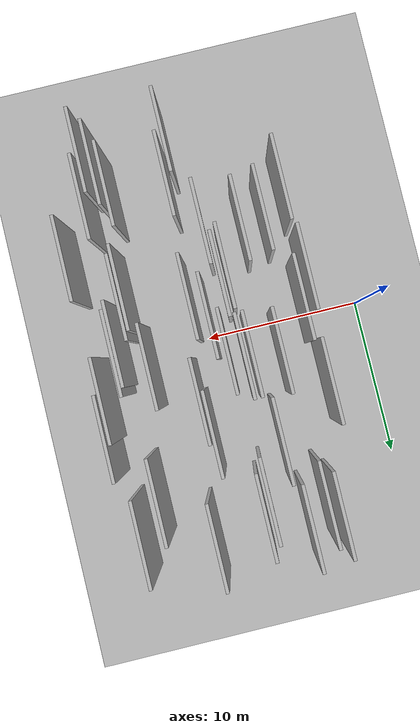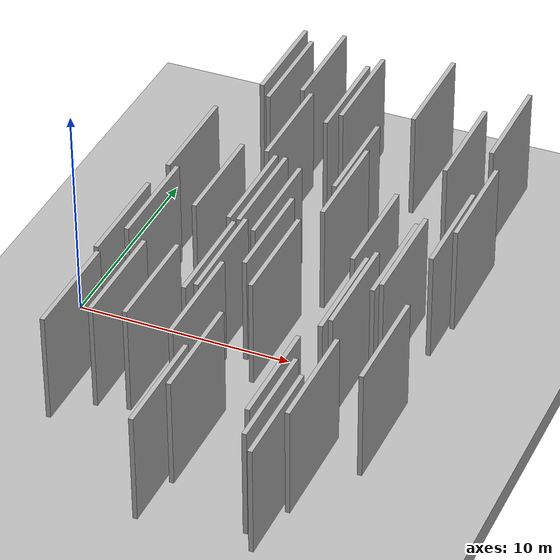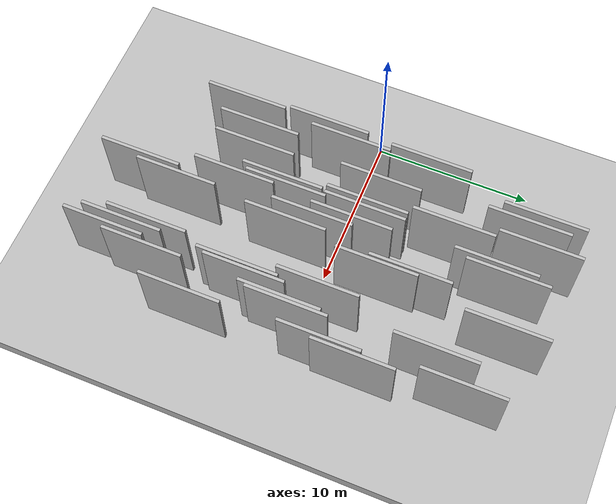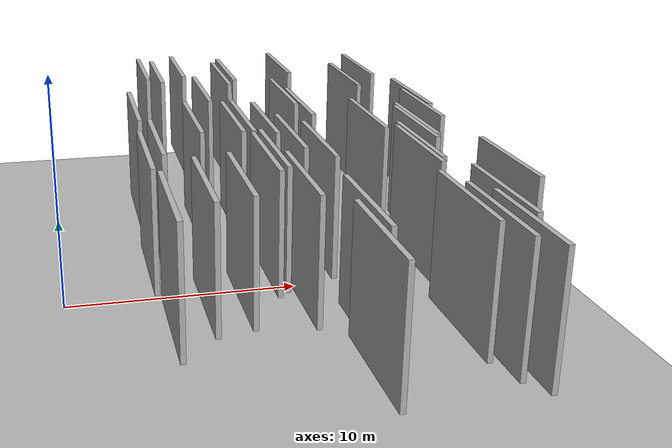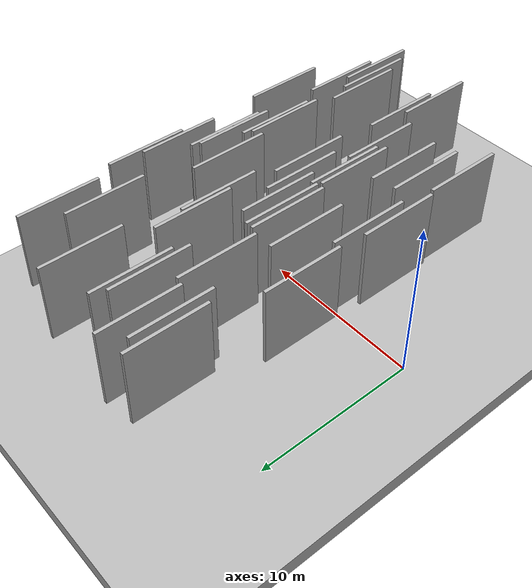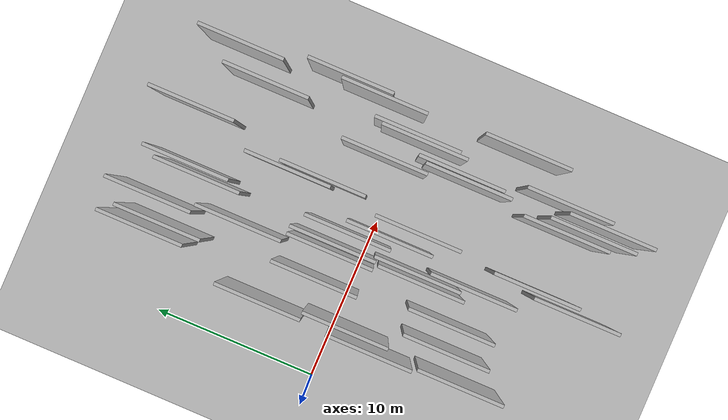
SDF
<?xml version="1.0" encoding="utf-8"?>

<sdf version="1.6">

   <world name="default">

      <gui fullscreen="0">

         <camera name="user_camera">

            <pose>-15 0 4.57585 0 0 0</pose>

            <view_controller>orbit</view_controller>

         </camera>

      </gui>

      <scene>

         <sky>

           <clouds>

             <speed>12</speed>

           </clouds>

         </sky>

         <ambient>0.4 0.4 0.4 1</ambient>

         <background>0.7 0.7 0.7 1</background>

         <shadows>1</shadows>

      </scene>

      <gravity>0 0 -9.8066</gravity>

      <magnetic_field>6e-06 2.3e-05 -4.2e-05</magnetic_field>

      <physics default="0" name="default_physics" type="ode">

         <ode>

            <solver>

               <type>quick</type>

               <iters>10</iters>

               <sor>1.0</sor>

               <use_dynamic_moi_rescaling>0</use_dynamic_moi_rescaling>

            </solver>

            <constraints>

               <cfm>0</cfm>

               <erp>0.2</erp>

               <contact_max_correcting_vel>100</contact_max_correcting_vel>

               <contact_surface_layer>0.001</contact_surface_layer>

            </constraints>

         </ode>

         <max_step_size>0.004</max_step_size>

         <real_time_factor>1</real_time_factor>

         <real_time_update_rate>250</real_time_update_rate>

      </physics>

      <light name="sun" type="directional">

         <cast_shadows>1</cast_shadows>

         <pose>0 0 10 0 0 0</pose>

         <diffuse>0.8 0.8 0.8 1</diffuse>

         <specular>0.2 0.2 0.2 1</specular>

         <attenuation>

            <range>1000</range>

            <constant>0.9</constant>

            <linear>0.01</linear>

            <quadratic>0.001</quadratic>

         </attenuation>

         <direction>-0.5 0.1 -0.9</direction>

      </light>

      <include>

         <name>ground_plane_1</name>

         <uri>model://HANNAS_ground_plane</uri>

         <pose>0 0 0  0 0 0</pose>

      </include>

      <include>

         <name>ground_plane_2</name>

         <uri>model://HANNAS_ground_plane</uri>

         <pose>100 0 0  0 0 0</pose>

      </include>

      <model name="HANNAS_wall_1">

         <static>1</static>

         <pose frame="">13.4638 1.0400 2.5 0.000000 0.000000 1.570796</pose>

         <link name="link">

            <pose frame="">0 0 2.50 0 0 0</pose>

            <collision name="collision">

               <geometry>

                  <box>

                     <size>5.00 0.2 5.00</size>

                  </box>

               </geometry>

               <max_contacts>10</max_contacts>

               <surface>

                  <contact>

                     <ode/>

                  </contact>

                  <bounce/>

                  <friction>

                     <torsional>

                        <ode/>

                     </torsional>

                     <ode/>

                  </friction>

               </surface>

            </collision>

            <visual name="visual">

               <cast_shadows>0</cast_shadows>

               <geometry>

                  <box>

                     <size>5.00 0.2 5.00</size>

                  </box>

               </geometry>

               <material>

                  <script>

                     <uri>model://HANNAS_wall/materials/scripts</uri>

                     <uri>model://HANNAS_wall/materials/textures</uri>

                     <name>vrc/HANNAS_wall</name>

                  </script>

               </material>

            </visual>

            <self_collide>0</self_collide>

            <enable_wind>0</enable_wind>

            <kinematic>0</kinematic>

         </link>

      </model>

      <model name="HANNAS_wall_2">

         <static>1</static>

         <pose frame="">10.3620 -2.2389 2.5 0.000000 0.000000 1.570796</pose>

         <link name="link">

            <pose frame="">0 0 2.50 0 0 0</pose>

            <collision name="collision">

               <geometry>

                  <box>

                     <size>5.00 0.2 5.00</size>

                  </box>

               </geometry>

               <max_contacts>10</max_contacts>

               <surface>

                  <contact>

                     <ode/>

                  </contact>

                  <bounce/>

                  <friction>

                     <torsional>

                        <ode/>

                     </torsional>

                     <ode/>

                  </friction>

               </surface>

            </collision>

            <visual name="visual">

               <cast_shadows>0</cast_shadows>

               <geometry>

                  <box>

                     <size>5.00 0.2 5.00</size>

                  </box>

               </geometry>

               <material>

                  <script>

                     <uri>model://HANNAS_wall/materials/scripts</uri>

                     <uri>model://HANNAS_wall/materials/textures</uri>

                     <name>vrc/HANNAS_wall</name>

                  </script>

               </material>

            </visual>

            <self_collide>0</self_collide>

            <enable_wind>0</enable_wind>

            <kinematic>0</kinematic>

         </link>

      </model>

      <model name="HANNAS_wall_3">

         <static>1</static>

         <pose frame="">10.7976 5.5351 2.5 0.000000 0.000000 1.570796</pose>

         <link name="link">

            <pose frame="">0 0 2.50 0 0 0</pose>

            <collision name="collision">

               <geometry>

                  <box>

                     <size>5.00 0.2 5.00</size>

                  </box>

               </geometry>

               <max_contacts>10</max_contacts>

               <surface>

                  <contact>

                     <ode/>

                  </contact>

                  <bounce/>

                  <friction>

                     <torsional>

                        <ode/>

                     </torsional>

                     <ode/>

                  </friction>

               </surface>

            </collision>

            <visual name="visual">

               <cast_shadows>0</cast_shadows>

               <geometry>

                  <box>

                     <size>5.00 0.2 5.00</size>

                  </box>

               </geometry>

               <material>

                  <script>

                     <uri>model://HANNAS_wall/materials/scripts</uri>

                     <uri>model://HANNAS_wall/materials/textures</uri>

                     <name>vrc/HANNAS_wall</name>

                  </script>

               </material>

            </visual>

            <self_collide>0</self_collide>

            <enable_wind>0</enable_wind>

            <kinematic>0</kinematic>

         </link>

      </model>

      <model name="HANNAS_wall_4">

         <static>1</static>

         <pose frame="">7.1092 6.8293 2.5 0.000000 0.000000 1.570796</pose>

         <link name="link">

            <pose frame="">0 0 2.50 0 0 0</pose>

            <collision name="collision">

               <geometry>

                  <box>

                     <size>5.00 0.2 5.00</size>

                  </box>

               </geometry>

               <max_contacts>10</max_contacts>

               <surface>

                  <contact>

                     <ode/>

                  </contact>

                  <bounce/>

                  <friction>

                     <torsional>

                        <ode/>

                     </torsional>

                     <ode/>

                  </friction>

               </surface>

            </collision>

            <visual name="visual">

               <cast_shadows>0</cast_shadows>

               <geometry>

                  <box>

                     <size>5.00 0.2 5.00</size>

                  </box>

               </geometry>

               <material>

                  <script>

                     <uri>model://HANNAS_wall/materials/scripts</uri>

                     <uri>model://HANNAS_wall/materials/textures</uri>

                     <name>vrc/HANNAS_wall</name>

                  </script>

               </material>

            </visual>

            <self_collide>0</self_collide>

            <enable_wind>0</enable_wind>

            <kinematic>0</kinematic>

         </link>

      </model>

      <model name="HANNAS_wall_5">

         <static>1</static>

         <pose frame="">4.0615 -0.6797 2.5 0.000000 0.000000 1.570796</pose>

         <link name="link">

            <pose frame="">0 0 2.50 0 0 0</pose>

            <collision name="collision">

               <geometry>

                  <box>

                     <size>5.00 0.2 5.00</size>

                  </box>

               </geometry>

               <max_contacts>10</max_contacts>

               <surface>

                  <contact>

                     <ode/>

                  </contact>

                  <bounce/>

                  <friction>

                     <torsional>

                        <ode/>

                     </torsional>

                     <ode/>

                  </friction>

               </surface>

            </collision>

            <visual name="visual">

               <cast_shadows>0</cast_shadows>

               <geometry>

                  <box>

                     <size>5.00 0.2 5.00</size>

                  </box>

               </geometry>

               <material>

                  <script>

                     <uri>model://HANNAS_wall/materials/scripts</uri>

                     <uri>model://HANNAS_wall/materials/textures</uri>

                     <name>vrc/HANNAS_wall</name>

                  </script>

               </material>

            </visual>

            <self_collide>0</self_collide>

            <enable_wind>0</enable_wind>

            <kinematic>0</kinematic>

         </link>

      </model>

      <model name="HANNAS_wall_6">

         <static>1</static>

         <pose frame="">8.5882 9.8667 2.5 0.000000 0.000000 1.570796</pose>

         <link name="link">

            <pose frame="">0 0 2.50 0 0 0</pose>

            <collision name="collision">

               <geometry>

                  <box>

                     <size>5.00 0.2 5.00</size>

                  </box>

               </geometry>

               <max_contacts>10</max_contacts>

               <surface>

                  <contact>

                     <ode/>

                  </contact>

                  <bounce/>

                  <friction>

                     <torsional>

                        <ode/>

                     </torsional>

                     <ode/>

                  </friction>

               </surface>

            </collision>

            <visual name="visual">

               <cast_shadows>0</cast_shadows>

               <geometry>

                  <box>

                     <size>5.00 0.2 5.00</size>

                  </box>

               </geometry>

               <material>

                  <script>

                     <uri>model://HANNAS_wall/materials/scripts</uri>

                     <uri>model://HANNAS_wall/materials/textures</uri>

                     <name>vrc/HANNAS_wall</name>

                  </script>

               </material>

            </visual>

            <self_collide>0</self_collide>

            <enable_wind>0</enable_wind>

            <kinematic>0</kinematic>

         </link>

      </model>

      <model name="HANNAS_wall_7">

         <static>1</static>

         <pose frame="">8.9923 10.6820 2.5 0.000000 0.000000 1.570796</pose>

         <link name="link">

            <pose frame="">0 0 2.50 0 0 0</pose>

            <collision name="collision">

               <geometry>

                  <box>

                     <size>5.00 0.2 5.00</size>

                  </box>

               </geometry>

               <max_contacts>10</max_contacts>

               <surface>

                  <contact>

                     <ode/>

                  </contact>

                  <bounce/>

                  <friction>

                     <torsional>

                        <ode/>

                     </torsional>

                     <ode/>

                  </friction>

               </surface>

            </collision>

            <visual name="visual">

               <cast_shadows>0</cast_shadows>

               <geometry>

                  <box>

                     <size>5.00 0.2 5.00</size>

                  </box>

               </geometry>

               <material>

                  <script>

                     <uri>model://HANNAS_wall/materials/scripts</uri>

                     <uri>model://HANNAS_wall/materials/textures</uri>

                     <name>vrc/HANNAS_wall</name>

                  </script>

               </material>

            </visual>

            <self_collide>0</self_collide>

            <enable_wind>0</enable_wind>

            <kinematic>0</kinematic>

         </link>

      </model>

      <model name="HANNAS_wall_8">

         <static>1</static>

         <pose frame="">8.6634 -6.1801 2.5 0.000000 0.000000 1.570796</pose>

         <link name="link">

            <pose frame="">0 0 2.50 0 0 0</pose>

            <collision name="collision">

               <geometry>

                  <box>

                     <size>5.00 0.2 5.00</size>

                  </box>

               </geometry>

               <max_contacts>10</max_contacts>

               <surface>

                  <contact>

                     <ode/>

                  </contact>

                  <bounce/>

                  <friction>

                     <torsional>

                        <ode/>

                     </torsional>

                     <ode/>

                  </friction>

               </surface>

            </collision>

            <visual name="visual">

               <cast_shadows>0</cast_shadows>

               <geometry>

                  <box>

                     <size>5.00 0.2 5.00</size>

                  </box>

               </geometry>

               <material>

                  <script>

                     <uri>model://HANNAS_wall/materials/scripts</uri>

                     <uri>model://HANNAS_wall/materials/textures</uri>

                     <name>vrc/HANNAS_wall</name>

                  </script>

               </material>

            </visual>

            <self_collide>0</self_collide>

            <enable_wind>0</enable_wind>

            <kinematic>0</kinematic>

         </link>

      </model>

      <model name="HANNAS_wall_9">

         <static>1</static>

         <pose frame="">15.2167 -0.1443 2.5 0.000000 0.000000 1.570796</pose>

         <link name="link">

            <pose frame="">0 0 2.50 0 0 0</pose>

            <collision name="collision">

               <geometry>

                  <box>

                     <size>5.00 0.2 5.00</size>

                  </box>

               </geometry>

               <max_contacts>10</max_contacts>

               <surface>

                  <contact>

                     <ode/>

                  </contact>

                  <bounce/>

                  <friction>

                     <torsional>

                        <ode/>

                     </torsional>

                     <ode/>

                  </friction>

               </surface>

            </collision>

            <visual name="visual">

               <cast_shadows>0</cast_shadows>

               <geometry>

                  <box>

                     <size>5.00 0.2 5.00</size>

                  </box>

               </geometry>

               <material>

                  <script>

                     <uri>model://HANNAS_wall/materials/scripts</uri>

                     <uri>model://HANNAS_wall/materials/textures</uri>

                     <name>vrc/HANNAS_wall</name>

                  </script>

               </material>

            </visual>

            <self_collide>0</self_collide>

            <enable_wind>0</enable_wind>

            <kinematic>0</kinematic>

         </link>

      </model>

      <model name="HANNAS_wall_10">

         <static>1</static>

         <pose frame="">8.9300 1.2568 2.5 0.000000 0.000000 1.570796</pose>

         <link name="link">

            <pose frame="">0 0 2.50 0 0 0</pose>

            <collision name="collision">

               <geometry>

                  <box>

                     <size>5.00 0.2 5.00</size>

                  </box>

               </geometry>

               <max_contacts>10</max_contacts>

               <surface>

                  <contact>

                     <ode/>

                  </contact>

                  <bounce/>

                  <friction>

                     <torsional>

                        <ode/>

                     </torsional>

                     <ode/>

                  </friction>

               </surface>

            </collision>

            <visual name="visual">

               <cast_shadows>0</cast_shadows>

               <geometry>

                  <box>

                     <size>5.00 0.2 5.00</size>

                  </box>

               </geometry>

               <material>

                  <script>

                     <uri>model://HANNAS_wall/materials/scripts</uri>

                     <uri>model://HANNAS_wall/materials/textures</uri>

                     <name>vrc/HANNAS_wall</name>

                  </script>

               </material>

            </visual>

            <self_collide>0</self_collide>

            <enable_wind>0</enable_wind>

            <kinematic>0</kinematic>

         </link>

      </model>

      <model name="HANNAS_wall_11">

         <static>1</static>

         <pose frame="">6.4800 -5.8282 2.5 0.000000 0.000000 1.570796</pose>

         <link name="link">

            <pose frame="">0 0 2.50 0 0 0</pose>

            <collision name="collision">

               <geometry>

                  <box>

                     <size>5.00 0.2 5.00</size>

                  </box>

               </geometry>

               <max_contacts>10</max_contacts>

               <surface>

                  <contact>

                     <ode/>

                  </contact>

                  <bounce/>

                  <friction>

                     <torsional>

                        <ode/>

                     </torsional>

                     <ode/>

                  </friction>

               </surface>

            </collision>

            <visual name="visual">

               <cast_shadows>0</cast_shadows>

               <geometry>

                  <box>

                     <size>5.00 0.2 5.00</size>

                  </box>

               </geometry>

               <material>

                  <script>

                     <uri>model://HANNAS_wall/materials/scripts</uri>

                     <uri>model://HANNAS_wall/materials/textures</uri>

                     <name>vrc/HANNAS_wall</name>

                  </script>

               </material>

            </visual>

            <self_collide>0</self_collide>

            <enable_wind>0</enable_wind>

            <kinematic>0</kinematic>

         </link>

      </model>

      <model name="HANNAS_wall_12">

         <static>1</static>

         <pose frame="">5.9363 1.9350 2.5 0.000000 0.000000 1.570796</pose>

         <link name="link">

            <pose frame="">0 0 2.50 0 0 0</pose>

            <collision name="collision">

               <geometry>

                  <box>

                     <size>5.00 0.2 5.00</size>

                  </box>

               </geometry>

               <max_contacts>10</max_contacts>

               <surface>

                  <contact>

                     <ode/>

                  </contact>

                  <bounce/>

                  <friction>

                     <torsional>

                        <ode/>

                     </torsional>

                     <ode/>

                  </friction>

               </surface>

            </collision>

            <visual name="visual">

               <cast_shadows>0</cast_shadows>

               <geometry>

                  <box>

                     <size>5.00 0.2 5.00</size>

                  </box>

               </geometry>

               <material>

                  <script>

                     <uri>model://HANNAS_wall/materials/scripts</uri>

                     <uri>model://HANNAS_wall/materials/textures</uri>

                     <name>vrc/HANNAS_wall</name>

                  </script>

               </material>

            </visual>

            <self_collide>0</self_collide>

            <enable_wind>0</enable_wind>

            <kinematic>0</kinematic>

         </link>

      </model>

      <model name="HANNAS_wall_13">

         <static>1</static>

         <pose frame="">14.6921 8.4638 2.5 0.000000 0.000000 1.570796</pose>

         <link name="link">

            <pose frame="">0 0 2.50 0 0 0</pose>

            <collision name="collision">

               <geometry>

                  <box>

                     <size>5.00 0.2 5.00</size>

                  </box>

               </geometry>

               <max_contacts>10</max_contacts>

               <surface>

                  <contact>

                     <ode/>

                  </contact>

                  <bounce/>

                  <friction>

                     <torsional>

                        <ode/>

                     </torsional>

                     <ode/>

                  </friction>

               </surface>

            </collision>

            <visual name="visual">

               <cast_shadows>0</cast_shadows>

               <geometry>

                  <box>

                     <size>5.00 0.2 5.00</size>

                  </box>

               </geometry>

               <material>

                  <script>

                     <uri>model://HANNAS_wall/materials/scripts</uri>

                     <uri>model://HANNAS_wall/materials/textures</uri>

                     <name>vrc/HANNAS_wall</name>

                  </script>

               </material>

            </visual>

            <self_collide>0</self_collide>

            <enable_wind>0</enable_wind>

            <kinematic>0</kinematic>

         </link>

      </model>

      <model name="HANNAS_wall_14">

         <static>1</static>

         <pose frame="">12.0146 11.6402 2.5 0.000000 0.000000 1.570796</pose>

         <link name="link">

            <pose frame="">0 0 2.50 0 0 0</pose>

            <collision name="collision">

               <geometry>

                  <box>

                     <size>5.00 0.2 5.00</size>

                  </box>

               </geometry>

               <max_contacts>10</max_contacts>

               <surface>

                  <contact>

                     <ode/>

                  </contact>

                  <bounce/>

                  <friction>

                     <torsional>

                        <ode/>

                     </torsional>

                     <ode/>

                  </friction>

               </surface>

            </collision>

            <visual name="visual">

               <cast_shadows>0</cast_shadows>

               <geometry>

                  <box>

                     <size>5.00 0.2 5.00</size>

                  </box>

               </geometry>

               <material>

                  <script>

                     <uri>model://HANNAS_wall/materials/scripts</uri>

                     <uri>model://HANNAS_wall/materials/textures</uri>

                     <name>vrc/HANNAS_wall</name>

                  </script>

               </material>

            </visual>

            <self_collide>0</self_collide>

            <enable_wind>0</enable_wind>

            <kinematic>0</kinematic>

         </link>

      </model>

      <model name="HANNAS_wall_15">

         <static>1</static>

         <pose frame="">16.7057 4.3830 2.5 0.000000 0.000000 1.570796</pose>

         <link name="link">

            <pose frame="">0 0 2.50 0 0 0</pose>

            <collision name="collision">

               <geometry>

                  <box>

                     <size>5.00 0.2 5.00</size>

                  </box>

               </geometry>

               <max_contacts>10</max_contacts>

               <surface>

                  <contact>

                     <ode/>

                  </contact>

                  <bounce/>

                  <friction>

                     <torsional>

                        <ode/>

                     </torsional>

                     <ode/>

                  </friction>

               </surface>

            </collision>

            <visual name="visual">

               <cast_shadows>0</cast_shadows>

               <geometry>

                  <box>

                     <size>5.00 0.2 5.00</size>

                  </box>

               </geometry>

               <material>

                  <script>

                     <uri>model://HANNAS_wall/materials/scripts</uri>

                     <uri>model://HANNAS_wall/materials/textures</uri>

                     <name>vrc/HANNAS_wall</name>

                  </script>

               </material>

            </visual>

            <self_collide>0</self_collide>

            <enable_wind>0</enable_wind>

            <kinematic>0</kinematic>

         </link>

      </model>

      <model name="HANNAS_wall_16">

         <static>1</static>

         <pose frame="">13.9967 -3.6289 2.5 0.000000 0.000000 1.570796</pose>

         <link name="link">

            <pose frame="">0 0 2.50 0 0 0</pose>

            <collision name="collision">

               <geometry>

                  <box>

                     <size>5.00 0.2 5.00</size>

                  </box>

               </geometry>

               <max_contacts>10</max_contacts>

               <surface>

                  <contact>

                     <ode/>

                  </contact>

                  <bounce/>

                  <friction>

                     <torsional>

                        <ode/>

                     </torsional>

                     <ode/>

                  </friction>

               </surface>

            </collision>

            <visual name="visual">

               <cast_shadows>0</cast_shadows>

               <geometry>

                  <box>

                     <size>5.00 0.2 5.00</size>

                  </box>

               </geometry>

               <material>

                  <script>

                     <uri>model://HANNAS_wall/materials/scripts</uri>

                     <uri>model://HANNAS_wall/materials/textures</uri>

                     <name>vrc/HANNAS_wall</name>

                  </script>

               </material>

            </visual>

            <self_collide>0</self_collide>

            <enable_wind>0</enable_wind>

            <kinematic>0</kinematic>

         </link>

      </model>

      <model name="HANNAS_wall_17">

         <static>1</static>

         <pose frame="">13.9272 -10.8865 2.5 0.000000 0.000000 1.570796</pose>

         <link name="link">

            <pose frame="">0 0 2.50 0 0 0</pose>

            <collision name="collision">

               <geometry>

                  <box>

                     <size>5.00 0.2 5.00</size>

                  </box>

               </geometry>

               <max_contacts>10</max_contacts>

               <surface>

                  <contact>

                     <ode/>

                  </contact>

                  <bounce/>

                  <friction>

                     <torsional>

                        <ode/>

                     </torsional>

                     <ode/>

                  </friction>

               </surface>

            </collision>

            <visual name="visual">

               <cast_shadows>0</cast_shadows>

               <geometry>

                  <box>

                     <size>5.00 0.2 5.00</size>

                  </box>

               </geometry>

               <material>

                  <script>

                     <uri>model://HANNAS_wall/materials/scripts</uri>

                     <uri>model://HANNAS_wall/materials/textures</uri>

                     <name>vrc/HANNAS_wall</name>

                  </script>

               </material>

            </visual>

            <self_collide>0</self_collide>

            <enable_wind>0</enable_wind>

            <kinematic>0</kinematic>

         </link>

      </model>

      <model name="HANNAS_wall_18">

         <static>1</static>

         <pose frame="">7.9397 -3.4321 2.5 0.000000 0.000000 1.570796</pose>

         <link name="link">

            <pose frame="">0 0 2.50 0 0 0</pose>

            <collision name="collision">

               <geometry>

                  <box>

                     <size>5.00 0.2 5.00</size>

                  </box>

               </geometry>

               <max_contacts>10</max_contacts>

               <surface>

                  <contact>

                     <ode/>

                  </contact>

                  <bounce/>

                  <friction>

                     <torsional>

                        <ode/>

                     </torsional>

                     <ode/>

                  </friction>

               </surface>

            </collision>

            <visual name="visual">

               <cast_shadows>0</cast_shadows>

               <geometry>

                  <box>

                     <size>5.00 0.2 5.00</size>

                  </box>

               </geometry>

               <material>

                  <script>

                     <uri>model://HANNAS_wall/materials/scripts</uri>

                     <uri>model://HANNAS_wall/materials/textures</uri>

                     <name>vrc/HANNAS_wall</name>

                  </script>

               </material>

            </visual>

            <self_collide>0</self_collide>

            <enable_wind>0</enable_wind>

            <kinematic>0</kinematic>

         </link>

      </model>

      <model name="HANNAS_wall_19">

         <static>1</static>

         <pose frame="">4.8163 11.5739 2.5 0.000000 0.000000 1.570796</pose>

         <link name="link">

            <pose frame="">0 0 2.50 0 0 0</pose>

            <collision name="collision">

               <geometry>

                  <box>

                     <size>5.00 0.2 5.00</size>

                  </box>

               </geometry>

               <max_contacts>10</max_contacts>

               <surface>

                  <contact>

                     <ode/>

                  </contact>

                  <bounce/>

                  <friction>

                     <torsional>

                        <ode/>

                     </torsional>

                     <ode/>

                  </friction>

               </surface>

            </collision>

            <visual name="visual">

               <cast_shadows>0</cast_shadows>

               <geometry>

                  <box>

                     <size>5.00 0.2 5.00</size>

                  </box>

               </geometry>

               <material>

                  <script>

                     <uri>model://HANNAS_wall/materials/scripts</uri>

                     <uri>model://HANNAS_wall/materials/textures</uri>

                     <name>vrc/HANNAS_wall</name>

                  </script>

               </material>

            </visual>

            <self_collide>0</self_collide>

            <enable_wind>0</enable_wind>

            <kinematic>0</kinematic>

         </link>

      </model>

      <model name="HANNAS_wall_20">

         <static>1</static>

         <pose frame="">11.0679 3.6112 2.5 0.000000 0.000000 1.570796</pose>

         <link name="link">

            <pose frame="">0 0 2.50 0 0 0</pose>

            <collision name="collision">

               <geometry>

                  <box>

                     <size>5.00 0.2 5.00</size>

                  </box>

               </geometry>

               <max_contacts>10</max_contacts>

               <surface>

                  <contact>

                     <ode/>

                  </contact>

                  <bounce/>

                  <friction>

                     <torsional>

                        <ode/>

                     </torsional>

                     <ode/>

                  </friction>

               </surface>

            </collision>

            <visual name="visual">

               <cast_shadows>0</cast_shadows>

               <geometry>

                  <box>

                     <size>5.00 0.2 5.00</size>

                  </box>

               </geometry>

               <material>

                  <script>

                     <uri>model://HANNAS_wall/materials/scripts</uri>

                     <uri>model://HANNAS_wall/materials/textures</uri>

                     <name>vrc/HANNAS_wall</name>

                  </script>

               </material>

            </visual>

            <self_collide>0</self_collide>

            <enable_wind>0</enable_wind>

            <kinematic>0</kinematic>

         </link>

      </model>

      <model name="HANNAS_wall_21">

         <static>1</static>

         <pose frame="">3.4622 -2.3037 2.5 0.000000 0.000000 1.570796</pose>

         <link name="link">

            <pose frame="">0 0 2.50 0 0 0</pose>

            <collision name="collision">

               <geometry>

                  <box>

                     <size>5.00 0.2 5.00</size>

                  </box>

               </geometry>

               <max_contacts>10</max_contacts>

               <surface>

                  <contact>

                     <ode/>

                  </contact>

                  <bounce/>

                  <friction>

                     <torsional>

                        <ode/>

                     </torsional>

                     <ode/>

                  </friction>

               </surface>

            </collision>

            <visual name="visual">

               <cast_shadows>0</cast_shadows>

               <geometry>

                  <box>

                     <size>5.00 0.2 5.00</size>

                  </box>

               </geometry>

               <material>

                  <script>

                     <uri>model://HANNAS_wall/materials/scripts</uri>

                     <uri>model://HANNAS_wall/materials/textures</uri>

                     <name>vrc/HANNAS_wall</name>

                  </script>

               </material>

            </visual>

            <self_collide>0</self_collide>

            <enable_wind>0</enable_wind>

            <kinematic>0</kinematic>

         </link>

      </model>

      <model name="HANNAS_wall_22">

         <static>1</static>

         <pose frame="">16.4252 2.2925 2.5 0.000000 0.000000 1.570796</pose>

         <link name="link">

            <pose frame="">0 0 2.50 0 0 0</pose>

            <collision name="collision">

               <geometry>

                  <box>

                     <size>5.00 0.2 5.00</size>

                  </box>

               </geometry>

               <max_contacts>10</max_contacts>

               <surface>

                  <contact>

                     <ode/>

                  </contact>

                  <bounce/>

                  <friction>

                     <torsional>

                        <ode/>

                     </torsional>

                     <ode/>

                  </friction>

               </surface>

            </collision>

            <visual name="visual">

               <cast_shadows>0</cast_shadows>

               <geometry>

                  <box>

                     <size>5.00 0.2 5.00</size>

                  </box>

               </geometry>

               <material>

                  <script>

                     <uri>model://HANNAS_wall/materials/scripts</uri>

                     <uri>model://HANNAS_wall/materials/textures</uri>

                     <name>vrc/HANNAS_wall</name>

                  </script>

               </material>

            </visual>

            <self_collide>0</self_collide>

            <enable_wind>0</enable_wind>

            <kinematic>0</kinematic>

         </link>

      </model>

      <model name="HANNAS_wall_23">

         <static>1</static>

         <pose frame="">16.0631 10.4890 2.5 0.000000 0.000000 1.570796</pose>

         <link name="link">

            <pose frame="">0 0 2.50 0 0 0</pose>

            <collision name="collision">

               <geometry>

                  <box>

                     <size>5.00 0.2 5.00</size>

                  </box>

               </geometry>

               <max_contacts>10</max_contacts>

               <surface>

                  <contact>

                     <ode/>

                  </contact>

                  <bounce/>

                  <friction>

                     <torsional>

                        <ode/>

                     </torsional>

                     <ode/>

                  </friction>

               </surface>

            </collision>

            <visual name="visual">

               <cast_shadows>0</cast_shadows>

               <geometry>

                  <box>

                     <size>5.00 0.2 5.00</size>

                  </box>

               </geometry>

               <material>

                  <script>

                     <uri>model://HANNAS_wall/materials/scripts</uri>

                     <uri>model://HANNAS_wall/materials/textures</uri>

                     <name>vrc/HANNAS_wall</name>

                  </script>

               </material>

            </visual>

            <self_collide>0</self_collide>

            <enable_wind>0</enable_wind>

            <kinematic>0</kinematic>

         </link>

      </model>

      <model name="HANNAS_wall_24">

         <static>1</static>

         <pose frame="">14.5401 -11.7421 2.5 0.000000 0.000000 1.570796</pose>

         <link name="link">

            <pose frame="">0 0 2.50 0 0 0</pose>

            <collision name="collision">

               <geometry>

                  <box>

                     <size>5.00 0.2 5.00</size>

                  </box>

               </geometry>

               <max_contacts>10</max_contacts>

               <surface>

                  <contact>

                     <ode/>

                  </contact>

                  <bounce/>

                  <friction>

                     <torsional>

                        <ode/>

                     </torsional>

                     <ode/>

                  </friction>

               </surface>

            </collision>

            <visual name="visual">

               <cast_shadows>0</cast_shadows>

               <geometry>

                  <box>

                     <size>5.00 0.2 5.00</size>

                  </box>

               </geometry>

               <material>

                  <script>

                     <uri>model://HANNAS_wall/materials/scripts</uri>

                     <uri>model://HANNAS_wall/materials/textures</uri>

                     <name>vrc/HANNAS_wall</name>

                  </script>

               </material>

            </visual>

            <self_collide>0</self_collide>

            <enable_wind>0</enable_wind>

            <kinematic>0</kinematic>

         </link>

      </model>

      <model name="HANNAS_wall_25">

         <static>1</static>

         <pose frame="">13.4513 -9.5272 2.5 0.000000 0.000000 1.570796</pose>

         <link name="link">

            <pose frame="">0 0 2.50 0 0 0</pose>

            <collision name="collision">

               <geometry>

                  <box>

                     <size>5.00 0.2 5.00</size>

                  </box>

               </geometry>

               <max_contacts>10</max_contacts>

               <surface>

                  <contact>

                     <ode/>

                  </contact>

                  <bounce/>

                  <friction>

                     <torsional>

                        <ode/>

                     </torsional>

                     <ode/>

                  </friction>

               </surface>

            </collision>

            <visual name="visual">

               <cast_shadows>0</cast_shadows>

               <geometry>

                  <box>

                     <size>5.00 0.2 5.00</size>

                  </box>

               </geometry>

               <material>

                  <script>

                     <uri>model://HANNAS_wall/materials/scripts</uri>

                     <uri>model://HANNAS_wall/materials/textures</uri>

                     <name>vrc/HANNAS_wall</name>

                  </script>

               </material>

            </visual>

            <self_collide>0</self_collide>

            <enable_wind>0</enable_wind>

            <kinematic>0</kinematic>

         </link>

      </model>

      <model name="HANNAS_wall_26">

         <static>1</static>

         <pose frame="">3.6778 -7.5434 2.5 0.000000 0.000000 1.570796</pose>

         <link name="link">

            <pose frame="">0 0 2.50 0 0 0</pose>

            <collision name="collision">

               <geometry>

                  <box>

                     <size>5.00 0.2 5.00</size>

                  </box>

               </geometry>

               <max_contacts>10</max_contacts>

               <surface>

                  <contact>

                     <ode/>

                  </contact>

                  <bounce/>

                  <friction>

                     <torsional>

                        <ode/>

                     </torsional>

                     <ode/>

                  </friction>

               </surface>

            </collision>

            <visual name="visual">

               <cast_shadows>0</cast_shadows>

               <geometry>

                  <box>

                     <size>5.00 0.2 5.00</size>

                  </box>

               </geometry>

               <material>

                  <script>

                     <uri>model://HANNAS_wall/materials/scripts</uri>

                     <uri>model://HANNAS_wall/materials/textures</uri>

                     <name>vrc/HANNAS_wall</name>

                  </script>

               </material>

            </visual>

            <self_collide>0</self_collide>

            <enable_wind>0</enable_wind>

            <kinematic>0</kinematic>

         </link>

      </model>

      <model name="HANNAS_wall_27">

         <static>1</static>

         <pose frame="">9.6198 -11.7687 2.5 0.000000 0.000000 1.570796</pose>

         <link name="link">

            <pose frame="">0 0 2.50 0 0 0</pose>

            <collision name="collision">

               <geometry>

                  <box>

                     <size>5.00 0.2 5.00</size>

                  </box>

               </geometry>

               <max_contacts>10</max_contacts>

               <surface>

                  <contact>

                     <ode/>

                  </contact>

                  <bounce/>

                  <friction>

                     <torsional>

                        <ode/>

                     </torsional>

                     <ode/>

                  </friction>

               </surface>

            </collision>

            <visual name="visual">

               <cast_shadows>0</cast_shadows>

               <geometry>

                  <box>

                     <size>5.00 0.2 5.00</size>

                  </box>

               </geometry>

               <material>

                  <script>

                     <uri>model://HANNAS_wall/materials/scripts</uri>

                     <uri>model://HANNAS_wall/materials/textures</uri>

                     <name>vrc/HANNAS_wall</name>

                  </script>

               </material>

            </visual>

            <self_collide>0</self_collide>

            <enable_wind>0</enable_wind>

            <kinematic>0</kinematic>

         </link>

      </model>

      <model name="HANNAS_wall_28">

         <static>1</static>

         <pose frame="">15.0145 -0.6363 2.5 0.000000 0.000000 1.570796</pose>

         <link name="link">

            <pose frame="">0 0 2.50 0 0 0</pose>

            <collision name="collision">

               <geometry>

                  <box>

                     <size>5.00 0.2 5.00</size>

                  </box>

               </geometry>

               <max_contacts>10</max_contacts>

               <surface>

                  <contact>

                     <ode/>

                  </contact>

                  <bounce/>

                  <friction>

                     <torsional>

                        <ode/>

                     </torsional>

                     <ode/>

                  </friction>

               </surface>

            </collision>

            <visual name="visual">

               <cast_shadows>0</cast_shadows>

               <geometry>

                  <box>

                     <size>5.00 0.2 5.00</size>

                  </box>

               </geometry>

               <material>

                  <script>

                     <uri>model://HANNAS_wall/materials/scripts</uri>

                     <uri>model://HANNAS_wall/materials/textures</uri>

                     <name>vrc/HANNAS_wall</name>

                  </script>

               </material>

            </visual>

            <self_collide>0</self_collide>

            <enable_wind>0</enable_wind>

            <kinematic>0</kinematic>

         </link>

      </model>

      <model name="HANNAS_wall_29">

         <static>1</static>

         <pose frame="">5.0991 -6.1091 2.5 0.000000 0.000000 1.570796</pose>

         <link name="link">

            <pose frame="">0 0 2.50 0 0 0</pose>

            <collision name="collision">

               <geometry>

                  <box>

                     <size>5.00 0.2 5.00</size>

                  </box>

               </geometry>

               <max_contacts>10</max_contacts>

               <surface>

                  <contact>

                     <ode/>

                  </contact>

                  <bounce/>

                  <friction>

                     <torsional>

                        <ode/>

                     </torsional>

                     <ode/>

                  </friction>

               </surface>

            </collision>

            <visual name="visual">

               <cast_shadows>0</cast_shadows>

               <geometry>

                  <box>

                     <size>5.00 0.2 5.00</size>

                  </box>

               </geometry>

               <material>

                  <script>

                     <uri>model://HANNAS_wall/materials/scripts</uri>

                     <uri>model://HANNAS_wall/materials/textures</uri>

                     <name>vrc/HANNAS_wall</name>

                  </script>

               </material>

            </visual>

            <self_collide>0</self_collide>

            <enable_wind>0</enable_wind>

            <kinematic>0</kinematic>

         </link>

      </model>

      <model name="HANNAS_wall_30">

         <static>1</static>

         <pose frame="">9.5168 -0.9366 2.5 0.000000 0.000000 1.570796</pose>

         <link name="link">

            <pose frame="">0 0 2.50 0 0 0</pose>

            <collision name="collision">

               <geometry>

                  <box>

                     <size>5.00 0.2 5.00</size>

                  </box>

               </geometry>

               <max_contacts>10</max_contacts>

               <surface>

                  <contact>

                     <ode/>

                  </contact>

                  <bounce/>

                  <friction>

                     <torsional>

                        <ode/>

                     </torsional>

                     <ode/>

                  </friction>

               </surface>

            </collision>

            <visual name="visual">

               <cast_shadows>0</cast_shadows>

               <geometry>

                  <box>

                     <size>5.00 0.2 5.00</size>

                  </box>

               </geometry>

               <material>

                  <script>

                     <uri>model://HANNAS_wall/materials/scripts</uri>

                     <uri>model://HANNAS_wall/materials/textures</uri>

                     <name>vrc/HANNAS_wall</name>

                  </script>

               </material>

            </visual>

            <self_collide>0</self_collide>

            <enable_wind>0</enable_wind>

            <kinematic>0</kinematic>

         </link>

      </model>

      <model name="HANNAS_wall_31">

         <static>1</static>

         <pose frame="">7.6117 1.7303 2.5 0.000000 0.000000 1.570796</pose>

         <link name="link">

            <pose frame="">0 0 2.50 0 0 0</pose>

            <collision name="collision">

               <geometry>

                  <box>

                     <size>5.00 0.2 5.00</size>

                  </box>

               </geometry>

               <max_contacts>10</max_contacts>

               <surface>

                  <contact>

                     <ode/>

                  </contact>

                  <bounce/>

                  <friction>

                     <torsional>

                        <ode/>

                     </torsional>

                     <ode/>

                  </friction>

               </surface>

            </collision>

            <visual name="visual">

               <cast_shadows>0</cast_shadows>

               <geometry>

                  <box>

                     <size>5.00 0.2 5.00</size>

                  </box>

               </geometry>

               <material>

                  <script>

                     <uri>model://HANNAS_wall/materials/scripts</uri>

                     <uri>model://HANNAS_wall/materials/textures</uri>

                     <name>vrc/HANNAS_wall</name>

                  </script>

               </material>

            </visual>

            <self_collide>0</self_collide>

            <enable_wind>0</enable_wind>

            <kinematic>0</kinematic>

         </link>

      </model>

      <model name="HANNAS_wall_32">

         <static>1</static>

         <pose frame="">8.0539 1.7455 2.5 0.000000 0.000000 1.570796</pose>

         <link name="link">

            <pose frame="">0 0 2.50 0 0 0</pose>

            <collision name="collision">

               <geometry>

                  <box>

                     <size>5.00 0.2 5.00</size>

                  </box>

               </geometry>

               <max_contacts>10</max_contacts>

               <surface>

                  <contact>

                     <ode/>

                  </contact>

                  <bounce/>

                  <friction>

                     <torsional>

                        <ode/>

                     </torsional>

                     <ode/>

                  </friction>

               </surface>

            </collision>

            <visual name="visual">

               <cast_shadows>0</cast_shadows>

               <geometry>

                  <box>

                     <size>5.00 0.2 5.00</size>

                  </box>

               </geometry>

               <material>

                  <script>

                     <uri>model://HANNAS_wall/materials/scripts</uri>

                     <uri>model://HANNAS_wall/materials/textures</uri>

                     <name>vrc/HANNAS_wall</name>

                  </script>

               </material>

            </visual>

            <self_collide>0</self_collide>

            <enable_wind>0</enable_wind>

            <kinematic>0</kinematic>

         </link>

      </model>

      <model name="HANNAS_wall_33">

         <static>1</static>

         <pose frame="">8.3247 -3.0700 2.5 0.000000 0.000000 1.570796</pose>

         <link name="link">

            <pose frame="">0 0 2.50 0 0 0</pose>

            <collision name="collision">

               <geometry>

                  <box>

                     <size>5.00 0.2 5.00</size>

                  </box>

               </geometry>

               <max_contacts>10</max_contacts>

               <surface>

                  <contact>

                     <ode/>

                  </contact>

                  <bounce/>

                  <friction>

                     <torsional>

                        <ode/>

                     </torsional>

                     <ode/>

                  </friction>

               </surface>

            </collision>

            <visual name="visual">

               <cast_shadows>0</cast_shadows>

               <geometry>

                  <box>

                     <size>5.00 0.2 5.00</size>

                  </box>

               </geometry>

               <material>

                  <script>

                     <uri>model://HANNAS_wall/materials/scripts</uri>

                     <uri>model://HANNAS_wall/materials/textures</uri>

                     <name>vrc/HANNAS_wall</name>

                  </script>

               </material>

            </visual>

            <self_collide>0</self_collide>

            <enable_wind>0</enable_wind>

            <kinematic>0</kinematic>

         </link>

      </model>

      <model name="HANNAS_wall_34">

         <static>1</static>

         <pose frame="">14.9402 -9.1194 2.5 0.000000 0.000000 1.570796</pose>

         <link name="link">

            <pose frame="">0 0 2.50 0 0 0</pose>

            <collision name="collision">

               <geometry>

                  <box>

                     <size>5.00 0.2 5.00</size>

                  </box>

               </geometry>

               <max_contacts>10</max_contacts>

               <surface>

                  <contact>

                     <ode/>

                  </contact>

                  <bounce/>

                  <friction>

                     <torsional>

                        <ode/>

                     </torsional>

                     <ode/>

                  </friction>

               </surface>

            </collision>

            <visual name="visual">

               <cast_shadows>0</cast_shadows>

               <geometry>

                  <box>

                     <size>5.00 0.2 5.00</size>

                  </box>

               </geometry>

               <material>

                  <script>

                     <uri>model://HANNAS_wall/materials/scripts</uri>

                     <uri>model://HANNAS_wall/materials/textures</uri>

                     <name>vrc/HANNAS_wall</name>

                  </script>

               </material>

            </visual>

            <self_collide>0</self_collide>

            <enable_wind>0</enable_wind>

            <kinematic>0</kinematic>

         </link>

      </model>

      <model name="HANNAS_wall_35">

         <static>1</static>

         <pose frame="">5.4408 10.8151 2.5 0.000000 0.000000 1.570796</pose>

         <link name="link">

            <pose frame="">0 0 2.50 0 0 0</pose>

            <collision name="collision">

               <geometry>

                  <box>

                     <size>5.00 0.2 5.00</size>

                  </box>

               </geometry>

               <max_contacts>10</max_contacts>

               <surface>

                  <contact>

                     <ode/>

                  </contact>

                  <bounce/>

                  <friction>

                     <torsional>

                        <ode/>

                     </torsional>

                     <ode/>

                  </friction>

               </surface>

            </collision>

            <visual name="visual">

               <cast_shadows>0</cast_shadows>

               <geometry>

                  <box>

                     <size>5.00 0.2 5.00</size>

                  </box>

               </geometry>

               <material>

                  <script>

                     <uri>model://HANNAS_wall/materials/scripts</uri>

                     <uri>model://HANNAS_wall/materials/textures</uri>

                     <name>vrc/HANNAS_wall</name>

                  </script>

               </material>

            </visual>

            <self_collide>0</self_collide>

            <enable_wind>0</enable_wind>

            <kinematic>0</kinematic>

         </link>

      </model>

      <model name="HANNAS_wall_36">

         <static>1</static>

         <pose frame="">16.6850 -5.9519 2.5 0.000000 0.000000 1.570796</pose>

         <link name="link">

            <pose frame="">0 0 2.50 0 0 0</pose>

            <collision name="collision">

               <geometry>

                  <box>

                     <size>5.00 0.2 5.00</size>

                  </box>

               </geometry>

               <max_contacts>10</max_contacts>

               <surface>

                  <contact>

                     <ode/>

                  </contact>

                  <bounce/>

                  <friction>

                     <torsional>

                        <ode/>

                     </torsional>

                     <ode/>

                  </friction>

               </surface>

            </collision>

            <visual name="visual">

               <cast_shadows>0</cast_shadows>

               <geometry>

                  <box>

                     <size>5.00 0.2 5.00</size>

                  </box>

               </geometry>

               <material>

                  <script>

                     <uri>model://HANNAS_wall/materials/scripts</uri>

                     <uri>model://HANNAS_wall/materials/textures</uri>

                     <name>vrc/HANNAS_wall</name>

                  </script>

               </material>

            </visual>

            <self_collide>0</self_collide>

            <enable_wind>0</enable_wind>

            <kinematic>0</kinematic>

         </link>

      </model>

      <model name="HANNAS_wall_37">

         <static>1</static>

         <pose frame="">14.2294 -3.1209 2.5 0.000000 0.000000 1.570796</pose>

         <link name="link">

            <pose frame="">0 0 2.50 0 0 0</pose>

            <collision name="collision">

               <geometry>

                  <box>

                     <size>5.00 0.2 5.00</size>

                  </box>

               </geometry>

               <max_contacts>10</max_contacts>

               <surface>

                  <contact>

                     <ode/>

                  </contact>

                  <bounce/>

                  <friction>

                     <torsional>

                        <ode/>

                     </torsional>

                     <ode/>

                  </friction>

               </surface>

            </collision>

            <visual name="visual">

               <cast_shadows>0</cast_shadows>

               <geometry>

                  <box>

                     <size>5.00 0.2 5.00</size>

                  </box>

               </geometry>

               <material>

                  <script>

                     <uri>model://HANNAS_wall/materials/scripts</uri>

                     <uri>model://HANNAS_wall/materials/textures</uri>

                     <name>vrc/HANNAS_wall</name>

                  </script>

               </material>

            </visual>

            <self_collide>0</self_collide>

            <enable_wind>0</enable_wind>

            <kinematic>0</kinematic>

         </link>

      </model>

      <model name="HANNAS_wall_38">

         <static>1</static>

         <pose frame="">6.6326 11.8655 2.5 0.000000 0.000000 1.570796</pose>

         <link name="link">

            <pose frame="">0 0 2.50 0 0 0</pose>

            <collision name="collision">

               <geometry>

                  <box>

                     <size>5.00 0.2 5.00</size>

                  </box>

               </geometry>

               <max_contacts>10</max_contacts>

               <surface>

                  <contact>

                     <ode/>

                  </contact>

                  <bounce/>

                  <friction>

                     <torsional>

                        <ode/>

                     </torsional>

                     <ode/>

                  </friction>

               </surface>

            </collision>

            <visual name="visual">

               <cast_shadows>0</cast_shadows>

               <geometry>

                  <box>

                     <size>5.00 0.2 5.00</size>

                  </box>

               </geometry>

               <material>

                  <script>

                     <uri>model://HANNAS_wall/materials/scripts</uri>

                     <uri>model://HANNAS_wall/materials/textures</uri>

                     <name>vrc/HANNAS_wall</name>

                  </script>

               </material>

            </visual>

            <self_collide>0</self_collide>

            <enable_wind>0</enable_wind>

            <kinematic>0</kinematic>

         </link>

      </model>

      <model name="HANNAS_wall_39">

         <static>1</static>

         <pose frame="">3.6477 4.2320 2.5 0.000000 0.000000 1.570796</pose>

         <link name="link">

            <pose frame="">0 0 2.50 0 0 0</pose>

            <collision name="collision">

               <geometry>

                  <box>

                     <size>5.00 0.2 5.00</size>

                  </box>

               </geometry>

               <max_contacts>10</max_contacts>

               <surface>

                  <contact>

                     <ode/>

                  </contact>

                  <bounce/>

                  <friction>

                     <torsional>

                        <ode/>

                     </torsional>

                     <ode/>

                  </friction>

               </surface>

            </collision>

            <visual name="visual">

               <cast_shadows>0</cast_shadows>

               <geometry>

                  <box>

                     <size>5.00 0.2 5.00</size>

                  </box>

               </geometry>

               <material>

                  <script>

                     <uri>model://HANNAS_wall/materials/scripts</uri>

                     <uri>model://HANNAS_wall/materials/textures</uri>

                     <name>vrc/HANNAS_wall</name>

                  </script>

               </material>

            </visual>

            <self_collide>0</self_collide>

            <enable_wind>0</enable_wind>

            <kinematic>0</kinematic>

         </link>

      </model>

      <model name="HANNAS_wall_40">

         <static>1</static>

         <pose frame="">10.0236 -9.2811 2.5 0.000000 0.000000 1.570796</pose>

         <link name="link">

            <pose frame="">0 0 2.50 0 0 0</pose>

            <collision name="collision">

               <geometry>

                  <box>

                     <size>5.00 0.2 5.00</size>

                  </box>

               </geometry>

               <max_contacts>10</max_contacts>

               <surface>

                  <contact>

                     <ode/>

                  </contact>

                  <bounce/>

                  <friction>

                     <torsional>

                        <ode/>

                     </torsional>

                     <ode/>

                  </friction>

               </surface>

            </collision>

            <visual name="visual">

               <cast_shadows>0</cast_shadows>

               <geometry>

                  <box>

                     <size>5.00 0.2 5.00</size>

                  </box>

               </geometry>

               <material>

                  <script>

                     <uri>model://HANNAS_wall/materials/scripts</uri>

                     <uri>model://HANNAS_wall/materials/textures</uri>

                     <name>vrc/HANNAS_wall</name>

                  </script>

               </material>

            </visual>

            <self_collide>0</self_collide>

            <enable_wind>0</enable_wind>

            <kinematic>0</kinematic>

         </link>

      </model>

   </world>

</sdf>
